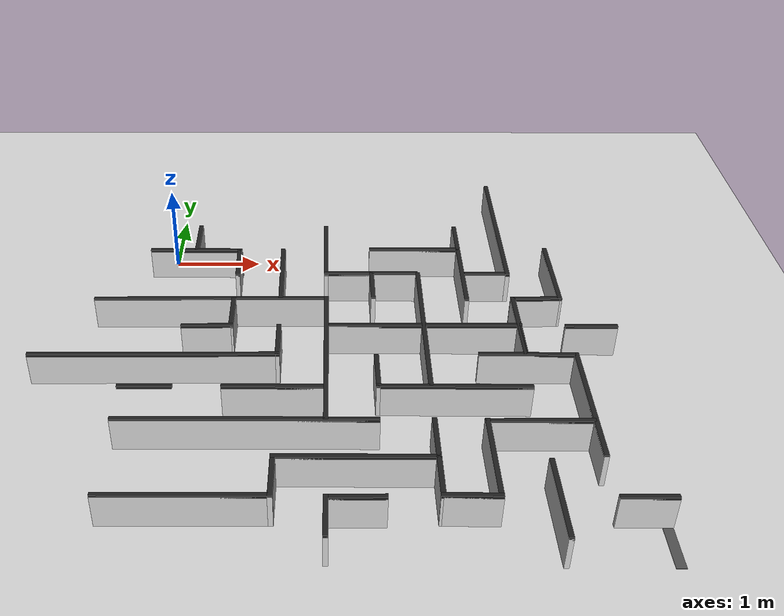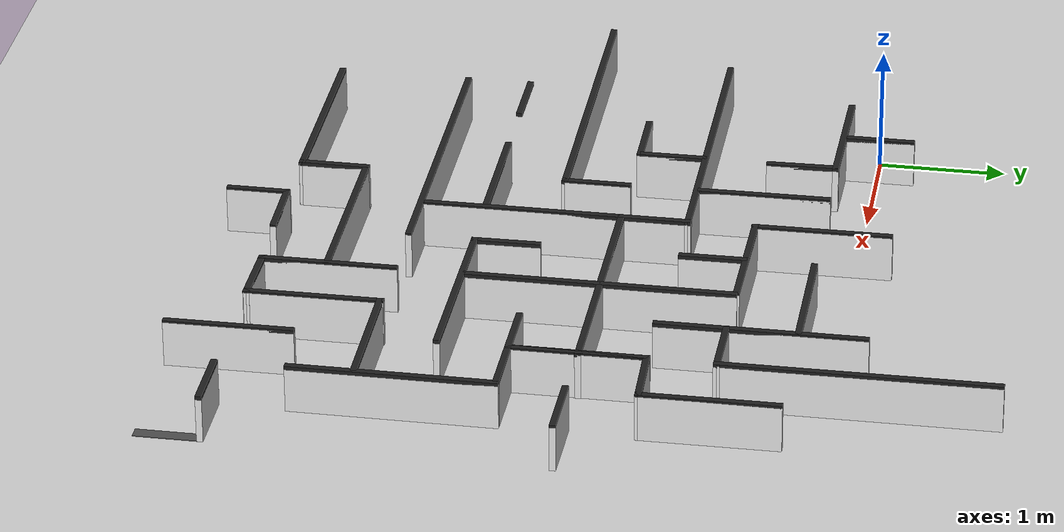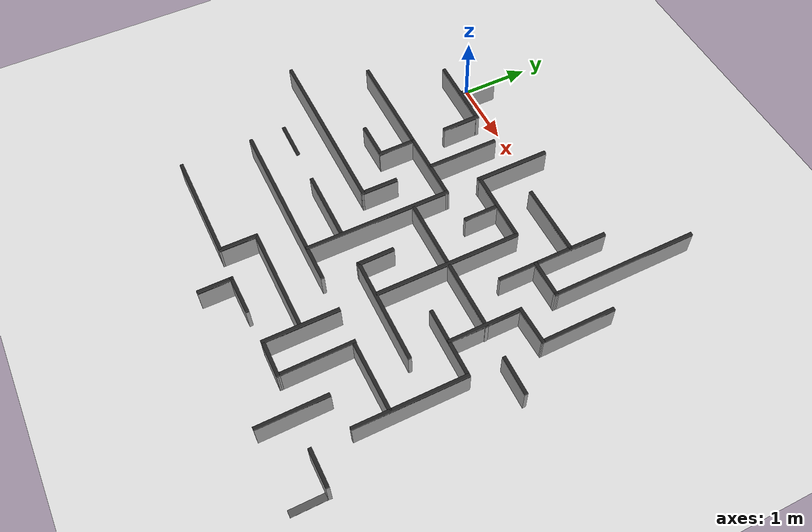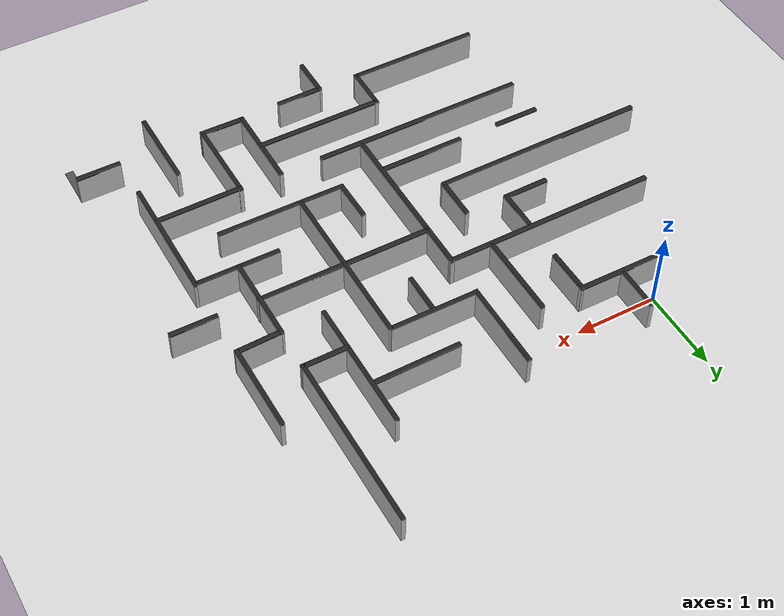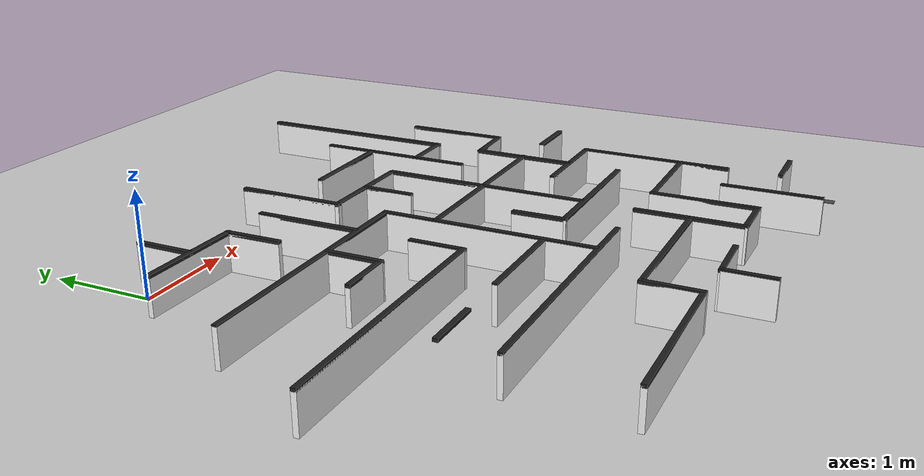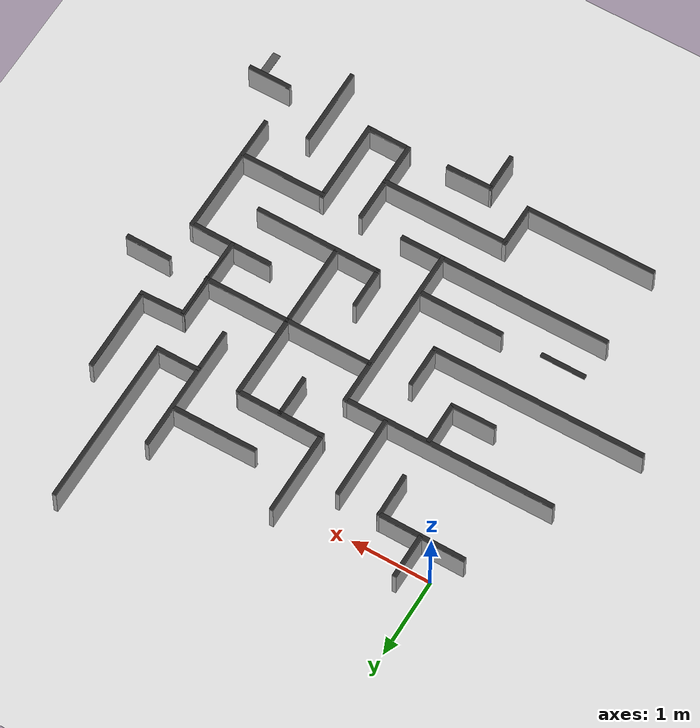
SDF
<sdf version="1.6">
 <world name="default">
  <model name="ground_plane">
   <static>1</static>
   <link name="link">
    <collision name="collision">
     <geometry><plane><normal>0 0 1</normal><size>100 100</size></plane></geometry>
     <surface><friction><ode><mu>100</mu><mu2>50</mu2></ode></friction></surface>
    </collision>
    <visual name="visual">
     <cast_shadows>0</cast_shadows>
     <geometry><plane><normal>0 0 1</normal><size>100 100</size></plane></geometry>
     <material>
      <script><uri>file://media/materials/scripts/gazebo.material</uri><name>Gazebo/Grey</name></script>
     </material>
    </visual>
   </link>
  </model>
  <model name="maze_cross_body">
   <link name="Wall_104">
    <collision name="Wall_104_Collision">
     <geometry><box><size>1.10225 0.05 0.37</size></box></geometry>
     <pose>0 0 0.185 0 -0 0</pose>
    </collision>
    <visual name="Wall_104_Visual">
     <pose>0 0 0.185 0 -0 0</pose>
     <geometry><box><size>1.10225 0.05 0.37</size></box></geometry>
     <material>
      <script><uri>file://media/materials/scripts/gazebo.material</uri><name>Gazebo/White</name></script>
      <ambient>1 1 1 1</ambient>
     </material>
    </visual>
    <pose>0.280113 -0.273238 0 0 0 -0.007388</pose>
   </link>
   <link name="Wall_106">
    <collision name="Wall_106_Collision">
     <geometry><box><size>0.575262 0.05 0.37</size></box></geometry>
     <pose>0 0 0.185 0 -0 0</pose>
    </collision>
    <visual name="Wall_106_Visual">
     <pose>0 0 0.185 0 -0 0</pose>
     <geometry><box><size>0.575262 0.05 0.37</size></box></geometry>
     <material>
      <script><uri>file://media/materials/scripts/gazebo.material</uri><name>Gazebo/White</name></script>
      <ambient>1 1 1 1</ambient>
     </material>
    </visual>
    <pose>0.806693 -0.539598 0 0 -0 1.58905</pose>
   </link>
   <link name="Wall_108">
    <collision name="Wall_108_Collision">
     <geometry><box><size>0.568453 0.05 0.37</size></box></geometry>
     <pose>0 0 0.185 0 -0 0</pose>
    </collision>
    <visual name="Wall_108_Visual">
     <pose>0 0 0.185 0 -0 0</pose>
     <geometry><box><size>0.568453 0.05 0.37</size></box></geometry>
     <material>
      <script><uri>file://media/materials/scripts/gazebo.material</uri><name>Gazebo/White</name></script>
      <ambient>1 1 1 1</ambient>
     </material>
    </visual>
    <pose>0.284037 0.010875 0 0 -0 1.57077</pose>
   </link>
   <link name="Wall_197">
    <collision name="Wall_197_Collision">
     <geometry><box><size>1.65 0.05 0.37</size></box></geometry>
     <pose>0 0 0.185 0 -0 0</pose>
    </collision>
    <visual name="Wall_197_Visual">
     <pose>0 0 0.185 0 -0 0</pose>
     <geometry><box><size>1.65 0.05 0.37</size></box></geometry>
     <material>
      <script><uri>file://media/materials/scripts/gazebo.material</uri><name>Gazebo/White</name></script>
      <ambient>1 1 1 1</ambient>
     </material>
    </visual>
    <pose>0.55 -4.45935 0 0 -0 0</pose>
   </link>
   <link name="Wall_198">
    <collision name="Wall_198_Collision">
     <geometry><box><size>0.564496 0.05 0.37</size></box></geometry>
     <pose>0 0 0.185 0 -0 0</pose>
    </collision>
    <visual name="Wall_198_Visual">
     <pose>0 0 0.185 0 -0 0</pose>
     <geometry><box><size>0.564496 0.05 0.37</size></box></geometry>
     <material>
      <script><uri>file://media/materials/scripts/gazebo.material</uri><name>Gazebo/White</name></script>
      <ambient>1 1 1 1</ambient>
     </material>
    </visual>
    <pose>1.3515 -4.20235 0 0 -0 1.56496</pose>
   </link>
   <link name="Wall_199">
    <collision name="Wall_199_Collision">
     <geometry><box><size>1.60756 0.05 0.37</size></box></geometry>
     <pose>0 0 0.185 0 -0 0</pose>
    </collision>
    <visual name="Wall_199_Visual">
     <pose>0 0 0.185 0 -0 0</pose>
     <geometry><box><size>1.60756 0.05 0.37</size></box></geometry>
     <material>
      <script><uri>file://media/materials/scripts/gazebo.material</uri><name>Gazebo/White</name></script>
      <ambient>1 1 1 1</ambient>
     </material>
    </visual>
    <pose>2.132 -3.94535 0 0 -0 0</pose>
   </link>
   <link name="Wall_201">
    <collision name="Wall_201_Collision">
     <geometry><box><size>0.504061 0.05 0.37</size></box></geometry>
     <pose>0 0 0.185 0 -0 0</pose>
    </collision>
    <visual name="Wall_201_Visual">
     <pose>0 0 0.185 0 -0 0</pose>
     <geometry><box><size>0.504061 0.05 0.37</size></box></geometry>
     <material>
      <script><uri>file://media/materials/scripts/gazebo.material</uri><name>Gazebo/White</name></script>
      <ambient>1 1 1 1</ambient>
     </material>
    </visual>
    <pose>1.852 -4.70835 0 0 0 -1.5708</pose>
   </link>
   <link name="Wall_203">
    <collision name="Wall_203_Collision">
     <geometry><box><size>0.586874 0.05 0.37</size></box></geometry>
     <pose>0 0 0.185 0 -0 0</pose>
    </collision>
    <visual name="Wall_203_Visual">
     <pose>0 0 0.185 0 -0 0</pose>
     <geometry><box><size>0.586874 0.05 0.37</size></box></geometry>
     <material>
      <script><uri>file://media/materials/scripts/gazebo.material</uri><name>Gazebo/White</name></script>
      <ambient>1 1 1 1</ambient>
     </material>
    </visual>
    <pose>2.1205 -4.47785 0 0 -0 0.013035</pose>
   </link>
   <link name="Wall_205">
    <collision name="Wall_205_Collision">
     <geometry><box><size>1.08389 0.05 0.37</size></box></geometry>
     <pose>0 0 0.185 0 -0 0</pose>
    </collision>
    <visual name="Wall_205_Visual">
     <pose>0 0 0.185 0 -0 0</pose>
     <geometry><box><size>1.08389 0.05 0.37</size></box></geometry>
     <material>
      <script><uri>file://media/materials/scripts/gazebo.material</uri><name>Gazebo/White</name></script>
      <ambient>1 1 1 1</ambient>
     </material>
    </visual>
    <pose>2.911 -3.93629 0 0 0 -1.5708</pose>
   </link>
   <link name="Wall_206">
    <collision name="Wall_206_Collision">
     <geometry><box><size>0.569926 0.05 0.37</size></box></geometry>
     <pose>0 0 0.185 0 -0 0</pose>
    </collision>
    <visual name="Wall_206_Visual">
     <pose>0 0 0.185 0 -0 0</pose>
     <geometry><box><size>0.569926 0.05 0.37</size></box></geometry>
     <material>
      <script><uri>file://media/materials/scripts/gazebo.material</uri><name>Gazebo/White</name></script>
      <ambient>1 1 1 1</ambient>
     </material>
    </visual>
    <pose>3.17094 -4.45656 0 0 0 -0.012792</pose>
   </link>
   <link name="Wall_207">
    <collision name="Wall_207_Collision">
     <geometry><box><size>1.07836 0.05 0.37</size></box></geometry>
     <pose>0 0 0.185 0 -0 0</pose>
    </collision>
    <visual name="Wall_207_Visual">
     <pose>0 0 0.185 0 -0 0</pose>
     <geometry><box><size>1.07836 0.05 0.37</size></box></geometry>
     <material>
      <script><uri>file://media/materials/scripts/gazebo.material</uri><name>Gazebo/White</name></script>
      <ambient>1 1 1 1</ambient>
     </material>
    </visual>
    <pose>3.42844 -3.94245 0 0 -0 1.57554</pose>
   </link>
   <link name="Wall_208">
    <collision name="Wall_208_Collision">
     <geometry><box><size>1.08079 0.05 0.37</size></box></geometry>
     <pose>0 0 0.185 0 -0 0</pose>
    </collision>
    <visual name="Wall_208_Visual">
     <pose>0 0 0.185 0 -0 0</pose>
     <geometry><box><size>1.08079 0.05 0.37</size></box></geometry>
     <material>
      <script><uri>file://media/materials/scripts/gazebo.material</uri><name>Gazebo/White</name></script>
      <ambient>1 1 1 1</ambient>
     </material>
    </visual>
    <pose>3.9415 -3.43131 0 0 -0 0.006789</pose>
   </link>
   <link name="Wall_210">
    <collision name="Wall_210_Collision">
     <geometry><box><size>1.00501 0.05 0.37</size></box></geometry>
     <pose>0 0 0.185 0 -0 0</pose>
    </collision>
    <visual name="Wall_210_Visual">
     <pose>0 0 0.185 0 -0 0</pose>
     <geometry><box><size>1.00501 0.05 0.37</size></box></geometry>
     <material>
      <script><uri>file://media/materials/scripts/gazebo.material</uri><name>Gazebo/White</name></script>
      <ambient>1 1 1 1</ambient>
     </material>
    </visual>
    <pose>3.9605 -4.48263 0 0 0 -1.56556</pose>
   </link>
   <link name="Wall_212">
    <collision name="Wall_212_Collision">
     <geometry><box><size>0.546237 0.05 0.37</size></box></geometry>
     <pose>0 0 0.185 0 -0 0</pose>
    </collision>
    <visual name="Wall_212_Visual">
     <pose>0 0 0.185 0 -0 0</pose>
     <geometry><box><size>0.546237 0.05 0.37</size></box></geometry>
     <material>
      <script><uri>file://media/materials/scripts/gazebo.material</uri><name>Gazebo/White</name></script>
      <ambient>1 1 1 1</ambient>
     </material>
    </visual>
    <pose>4.75559 -4.47399 0 0 -0 0</pose>
   </link>
   <link name="Wall_214">
    <collision name="Wall_214_Collision">
     <geometry><box><size>1.60621 0.05 0.37</size></box></geometry>
     <pose>0 0 0.185 0 -0 0</pose>
    </collision>
    <visual name="Wall_214_Visual">
     <pose>0 0 0.185 0 -0 0</pose>
     <geometry><box><size>1.60621 0.05 0.37</size></box></geometry>
     <material>
      <script><uri>file://media/materials/scripts/gazebo.material</uri><name>Gazebo/White</name></script>
      <ambient>1 1 1 1</ambient>
     </material>
    </visual>
    <pose>4.4825 -3.14235 0 0 0 -1.57401</pose>
   </link>
   <link name="Wall_216">
    <collision name="Wall_216_Collision">
     <geometry><box><size>1.01901 0.05 0.37</size></box></geometry>
     <pose>0 0 0.185 0 -0 0</pose>
    </collision>
    <visual name="Wall_216_Visual">
     <pose>0 0 0.185 0 -0 0</pose>
     <geometry><box><size>1.01901 0.05 0.37</size></box></geometry>
     <material>
      <script><uri>file://media/materials/scripts/gazebo.material</uri><name>Gazebo/White</name></script>
      <ambient>1 1 1 1</ambient>
     </material>
    </visual>
    <pose>3.96526 -2.36066 0 0 0 -0.00516</pose>
   </link>
   <link name="Wall_218">
    <collision name="Wall_218_Collision">
     <geometry><box><size>1.069 0.05 0.37</size></box></geometry>
     <pose>0 0 0.185 0 -0 0</pose>
    </collision>
    <visual name="Wall_218_Visual">
     <pose>0 0 0.185 0 -0 0</pose>
     <geometry><box><size>1.069 0.05 0.37</size></box></geometry>
     <material>
      <script><uri>file://media/materials/scripts/gazebo.material</uri><name>Gazebo/White</name></script>
      <ambient>1 1 1 1</ambient>
     </material>
    </visual>
    <pose>3.95799 -1.84479 0 0 0 -1.57077</pose>
   </link>
   <link name="Wall_220">
    <collision name="Wall_220_Collision">
     <geometry><box><size>2.1499 0.05 0.37</size></box></geometry>
     <pose>0 0 0.185 0 -0 0</pose>
    </collision>
    <visual name="Wall_220_Visual">
     <pose>0 0 0.185 0 -0 0</pose>
     <geometry><box><size>2.1499 0.05 0.37</size></box></geometry>
     <material>
      <script><uri>file://media/materials/scripts/gazebo.material</uri><name>Gazebo/White</name></script>
      <ambient>1 1 1 1</ambient>
     </material>
    </visual>
    <pose>2.915 -1.83235 0 0 -0 0</pose>
   </link>
   <link name="Wall_222">
    <collision name="Wall_222_Collision">
     <geometry><box><size>2.10657 0.05 0.37</size></box></geometry>
     <pose>0 0 0.185 0 -0 0</pose>
    </collision>
    <visual name="Wall_222_Visual">
     <pose>0 0 0.185 0 -0 0</pose>
     <geometry><box><size>2.10657 0.05 0.37</size></box></geometry>
     <material>
      <script><uri>file://media/materials/scripts/gazebo.material</uri><name>Gazebo/White</name></script>
      <ambient>1 1 1 1</ambient>
     </material>
    </visual>
    <pose>2.916 -1.83485 0 0 0 -1.5708</pose>
   </link>
   <link name="Wall_224">
    <collision name="Wall_224_Collision">
     <geometry><box><size>0.54288 0.05 0.37</size></box></geometry>
     <pose>0 0 0.185 0 -0 0</pose>
    </collision>
    <visual name="Wall_224_Visual">
     <pose>0 0 0.185 0 -0 0</pose>
     <geometry><box><size>0.54288 0.05 0.37</size></box></geometry>
     <material>
      <script><uri>file://media/materials/scripts/gazebo.material</uri><name>Gazebo/White</name></script>
      <ambient>1 1 1 1</ambient>
     </material>
    </visual>
    <pose>2.3823 -2.64744 0 0 0 -1.55738</pose>
   </link>
   <link name="Wall_226">
    <collision name="Wall_226_Collision">
     <geometry><box><size>1.59634 0.05 0.37</size></box></geometry>
     <pose>0 0 0.185 0 -0 0</pose>
    </collision>
    <visual name="Wall_226_Visual">
     <pose>0 0 0.185 0 -0 0</pose>
     <geometry><box><size>1.59634 0.05 0.37</size></box></geometry>
     <material>
      <script><uri>file://media/materials/scripts/gazebo.material</uri><name>Gazebo/White</name></script>
      <ambient>1 1 1 1</ambient>
     </material>
    </visual>
    <pose>3.15876 -2.89834 0 0 0 -0.006231</pose>
   </link>
   <link name="Wall_228">
    <collision name="Wall_228_Collision">
     <geometry><box><size>2.14428 0.05 0.37</size></box></geometry>
     <pose>0 0 0.185 0 -0 0</pose>
    </collision>
    <visual name="Wall_228_Visual">
     <pose>0 0 0.185 0 -0 0</pose>
     <geometry><box><size>2.14428 0.05 0.37</size></box></geometry>
     <material>
      <script><uri>file://media/materials/scripts/gazebo.material</uri><name>Gazebo/White</name></script>
      <ambient>1 1 1 1</ambient>
     </material>
    </visual>
    <pose>1.85 -2.35635 0 0 0 -1.5708</pose>
   </link>
   <link name="Wall_230">
    <collision name="Wall_230_Collision">
     <geometry><box><size>2.65165 0.05 0.37</size></box></geometry>
     <pose>0 0 0.185 0 -0 0</pose>
    </collision>
    <visual name="Wall_230_Visual">
     <pose>0 0 0.185 0 -0 0</pose>
     <geometry><box><size>2.65165 0.05 0.37</size></box></geometry>
     <material>
      <script><uri>file://media/materials/scripts/gazebo.material</uri><name>Gazebo/White</name></script>
      <ambient>1 1 1 1</ambient>
     </material>
    </visual>
    <pose>1.057 -3.41235 0 0 -0 0</pose>
   </link>
   <link name="Wall_236">
    <collision name="Wall_236_Collision">
     <geometry><box><size>1.04339 0.05 0.37</size></box></geometry>
     <pose>0 0 0.185 0 -0 0</pose>
    </collision>
    <visual name="Wall_236_Visual">
     <pose>0 0 0.185 0 -0 0</pose>
     <geometry><box><size>1.04339 0.05 0.37</size></box></geometry>
     <material>
      <script><uri>file://media/materials/scripts/gazebo.material</uri><name>Gazebo/White</name></script>
      <ambient>1 1 1 1</ambient>
     </material>
    </visual>
    <pose>1.3055 -2.90235 0 0 -0 0</pose>
   </link>
   <link name="Wall_238">
    <collision name="Wall_238_Collision">
     <geometry><box><size>2.64804 0.05 0.37</size></box></geometry>
     <pose>0 0 0.185 0 -0 0</pose>
    </collision>
    <visual name="Wall_238_Visual">
     <pose>0 0 0.185 0 -0 0</pose>
     <geometry><box><size>2.64804 0.05 0.37</size></box></geometry>
     <material>
      <script><uri>file://media/materials/scripts/gazebo.material</uri><name>Gazebo/White</name></script>
      <ambient>1 1 1 1</ambient>
     </material>
    </visual>
    <pose>0.551 -1.31635 0 0 -0 0.005389</pose>
   </link>
   <link name="Wall_240">
    <collision name="Wall_240_Collision">
     <geometry><box><size>1.04911 0.05 0.37</size></box></geometry>
     <pose>0 0 0.185 0 -0 0</pose>
    </collision>
    <visual name="Wall_240_Visual">
     <pose>0 0 0.185 0 -0 0</pose>
     <geometry><box><size>1.04911 0.05 0.37</size></box></geometry>
     <material>
      <script><uri>file://media/materials/scripts/gazebo.material</uri><name>Gazebo/White</name></script>
      <ambient>1 1 1 1</ambient>
     </material>
    </visual>
    <pose>1.331 -0.780851 0 0 0 -1.56479</pose>
   </link>
   <link name="Wall_317">
    <collision name="Wall_317_Collision">
     <geometry><box><size>1.0997 0.05 0.37</size></box></geometry>
     <pose>0 0 0.185 0 -0 0</pose>
    </collision>
    <visual name="Wall_317_Visual">
     <pose>0 0 0.185 0 -0 0</pose>
     <geometry><box><size>1.0997 0.05 0.37</size></box></geometry>
     <material>
      <script><uri>file://media/materials/scripts/gazebo.material</uri><name>Gazebo/White</name></script>
      <ambient>1 1 1 1</ambient>
     </material>
    </visual>
    <pose>1.8435 -0.263196 0 0 0 -1.56603</pose>
   </link>
   <link name="Wall_318">
    <collision name="Wall_318_Collision">
     <geometry><box><size>1.09642 0.05 0.37</size></box></geometry>
     <pose>0 0 0.185 0 -0 0</pose>
    </collision>
    <visual name="Wall_318_Visual">
     <pose>0 0 0.185 0 -0 0</pose>
     <geometry><box><size>1.09642 0.05 0.37</size></box></geometry>
     <material>
      <script><uri>file://media/materials/scripts/gazebo.material</uri><name>Gazebo/White</name></script>
      <ambient>1 1 1 1</ambient>
     </material>
    </visual>
    <pose>2.369 -0.787773 0 0 0 -0.005736</pose>
   </link>
   <link name="Wall_320">
    <collision name="Wall_320_Collision">
     <geometry><box><size>0.527701 0.05 0.37</size></box></geometry>
     <pose>0 0 0.185 0 -0 0</pose>
    </collision>
    <visual name="Wall_320_Visual">
     <pose>0 0 0.185 0 -0 0</pose>
     <geometry><box><size>0.527701 0.05 0.37</size></box></geometry>
     <material>
      <script><uri>file://media/materials/scripts/gazebo.material</uri><name>Gazebo/White</name></script>
      <ambient>1 1 1 1</ambient>
     </material>
    </visual>
    <pose>2.3795 -1.04235 0 0 0 -1.56452</pose>
   </link>
   <link name="Wall_322">
    <collision name="Wall_322_Collision">
     <geometry><box><size>1.63234 0.05 0.37</size></box></geometry>
     <pose>0 0 0.185 0 -0 0</pose>
    </collision>
    <visual name="Wall_322_Visual">
     <pose>0 0 0.185 0 -0 0</pose>
     <geometry><box><size>1.63234 0.05 0.37</size></box></geometry>
     <material>
      <script><uri>file://media/materials/scripts/gazebo.material</uri><name>Gazebo/White</name></script>
      <ambient>1 1 1 1</ambient>
     </material>
    </visual>
    <pose>3.436 -0.534351 0 0 0 -1.5708</pose>
   </link>
   <link name="Wall_324">
    <collision name="Wall_324_Collision">
     <geometry><box><size>1.0788 0.05 0.37</size></box></geometry>
     <pose>0 0 0.185 0 -0 0</pose>
    </collision>
    <visual name="Wall_324_Visual">
     <pose>0 0 0.185 0 -0 0</pose>
     <geometry><box><size>1.0788 0.05 0.37</size></box></geometry>
     <material>
      <script><uri>file://media/materials/scripts/gazebo.material</uri><name>Gazebo/White</name></script>
      <ambient>1 1 1 1</ambient>
     </material>
    </visual>
    <pose>2.90461 -0.255597 0 0 -0 0.004366</pose>
   </link>
   <link name="Wall_339">
    <collision name="Wall_339_Collision">
     <geometry><box><size>2.15538 0.05 0.37</size></box></geometry>
     <pose>0 0 0.185 0 -0 0</pose>
    </collision>
    <visual name="Wall_339_Visual">
     <pose>0 0 0.185 0 -0 0</pose>
     <geometry><box><size>2.15538 0.05 0.37</size></box></geometry>
     <material>
      <script><uri>file://media/materials/scripts/gazebo.material</uri><name>Gazebo/White</name></script>
      <ambient>1 1 1 1</ambient>
     </material>
    </visual>
    <pose>3.96277 0.256609 0 0 0 -1.56952</pose>
   </link>
   <link name="Wall_340">
    <collision name="Wall_340_Collision">
     <geometry><box><size>0.569 0.05 0.37</size></box></geometry>
     <pose>0 0 0.185 0 -0 0</pose>
    </collision>
    <visual name="Wall_340_Visual">
     <pose>0 0 0.185 0 -0 0</pose>
     <geometry><box><size>0.569 0.05 0.37</size></box></geometry>
     <material>
      <script><uri>file://media/materials/scripts/gazebo.material</uri><name>Gazebo/White</name></script>
      <ambient>1 1 1 1</ambient>
     </material>
    </visual>
    <pose>3.70461 -0.795728 0 0 -0 3.14159</pose>
   </link>
   <link name="Wall_342">
    <collision name="Wall_342_Collision">
     <geometry><box><size>1.09101 0.05 0.37</size></box></geometry>
     <pose>0 0 0.185 0 -0 0</pose>
    </collision>
    <visual name="Wall_342_Visual">
     <pose>0 0 0.185 0 -0 0</pose>
     <geometry><box><size>1.09101 0.05 0.37</size></box></geometry>
     <material>
      <script><uri>file://media/materials/scripts/gazebo.material</uri><name>Gazebo/White</name></script>
      <ambient>1 1 1 1</ambient>
     </material>
    </visual>
    <pose>4.487 -0.783851 0 0 0 -1.56695</pose>
   </link>
   <link name="Wall_343">
    <collision name="Wall_343_Collision">
     <geometry><box><size>0.580661 0.05 0.37</size></box></geometry>
     <pose>0 0 0.185 0 -0 0</pose>
    </collision>
    <visual name="Wall_343_Visual">
     <pose>0 0 0.185 0 -0 0</pose>
     <geometry><box><size>0.580661 0.05 0.37</size></box></geometry>
     <material>
      <script><uri>file://media/materials/scripts/gazebo.material</uri><name>Gazebo/White</name></script>
      <ambient>1 1 1 1</ambient>
     </material>
    </visual>
    <pose>4.22371 -1.31284 0 0 0 -3.1096</pose>
   </link>
   <link name="Wall_344">
    <collision name="Wall_344_Collision">
     <geometry><box><size>1.08302 0.05 0.37</size></box></geometry>
     <pose>0 0 0.185 0 -0 0</pose>
    </collision>
    <visual name="Wall_344_Visual">
     <pose>0 0 0.185 0 -0 0</pose>
     <geometry><box><size>1.08302 0.05 0.37</size></box></geometry>
     <material>
      <script><uri>file://media/materials/scripts/gazebo.material</uri><name>Gazebo/White</name></script>
      <ambient>1 1 1 1</ambient>
     </material>
    </visual>
    <pose>3.95821 -1.83784 0 0 0 -1.57121</pose>
   </link>
   <link name="Wall_352">
    <collision name="Wall_352_Collision">
     <geometry><box><size>0.554004 0.05 0.37</size></box></geometry>
     <pose>0 0 0.185 0 -0 0</pose>
    </collision>
    <visual name="Wall_352_Visual">
     <pose>0 0 0.185 0 -0 0</pose>
     <geometry><box><size>0.554004 0.05 0.37</size></box></geometry>
     <material>
      <script><uri>file://media/materials/scripts/gazebo.material</uri><name>Gazebo/White</name></script>
      <ambient>1 1 1 1</ambient>
     </material>
    </visual>
    <pose>0.805 -1.58635 0 0 -0 1.57476</pose>
   </link>
   <link name="Wall_354">
    <collision name="Wall_354_Collision">
     <geometry><box><size>0.569558 0.05 0.37</size></box></geometry>
     <pose>0 0 0.185 0 -0 0</pose>
    </collision>
    <visual name="Wall_354_Visual">
     <pose>0 0 0.185 0 -0 0</pose>
     <geometry><box><size>0.569558 0.05 0.37</size></box></geometry>
     <material>
      <script><uri>file://media/materials/scripts/gazebo.material</uri><name>Gazebo/White</name></script>
      <ambient>1 1 1 1</ambient>
     </material>
    </visual>
    <pose>0.546 -1.84135 0 0 -0 0.011538</pose>
   </link>
   <link name="Wall_356">
    <collision name="Wall_356_Collision">
     <geometry><box><size>0.573257 0.05 0.37</size></box></geometry>
     <pose>0 0 0.185 0 -0 0</pose>
    </collision>
    <visual name="Wall_356_Visual">
     <pose>0 0 0.185 0 -0 0</pose>
     <geometry><box><size>0.573257 0.05 0.37</size></box></geometry>
     <material>
      <script><uri>file://media/materials/scripts/gazebo.material</uri><name>Gazebo/White</name></script>
      <ambient>1 1 1 1</ambient>
     </material>
    </visual>
    <pose>4.7425 -1.84935 0 0 0 -0.007648</pose>
   </link>
   <link name="Wall_97">
    <collision name="Wall_97_Collision">
     <geometry><box><size>2.66641 0.05 0.37</size></box></geometry>
     <pose>0 0 0.185 0 -0 0</pose>
    </collision>
    <visual name="Wall_97_Visual">
     <pose>0 0 0.185 0 -0 0</pose>
     <geometry><box><size>2.66641 0.05 0.37</size></box></geometry>
     <material>
      <script><uri>file://media/materials/scripts/gazebo.material</uri><name>Gazebo/White</name></script>
      <ambient>1 1 1 1</ambient>
     </material>
    </visual>
    <pose>0.026256 -2.364 0 0 -0 0.005716</pose>
   </link>
   <link name="Wall_98">
    <collision name="Wall_98_Collision">
     <geometry><box><size>0.549284 0.05 0.37</size></box></geometry>
     <pose>0 0 0.185 0 -0 0</pose>
    </collision>
    <visual name="Wall_98_Visual">
     <pose>0 0 0.185 0 -0 0</pose>
     <geometry><box><size>0.549284 0.05 0.37</size></box></geometry>
     <material>
      <script><uri>file://media/materials/scripts/gazebo.material</uri><name>Gazebo/White</name></script>
      <ambient>1 1 1 1</ambient>
     </material>
    </visual>
    <pose>1.33444 -2.10699 0 0 -0 1.5708</pose>
   </link>
   <static>1</static>
  </model>
  <model name="maze_cross_body_0">
   <link name="Wall_104">
    <collision name="Wall_104_Collision">
     <geometry><box><size>1.10225 0.05 0.03</size></box></geometry>
     <pose>0 0 0.37 0 -0 0</pose>
    </collision>
    <visual name="Wall_104_Visual">
     <pose>0 0 0.37 0 -0 0</pose>
     <geometry><box><size>1.10225 0.05 0.03</size></box></geometry>
     <material>
      <script><uri>file://media/materials/scripts/gazebo.material</uri><name>Gazebo/Black</name></script>
      <ambient>0 0 0 1</ambient>
     </material>
    </visual>
    <pose>0.280113 -0.273238 0 0 0 -0.007388</pose>
   </link>
   <link name="Wall_106">
    <collision name="Wall_106_Collision">
     <geometry><box><size>0.575262 0.05 0.03</size></box></geometry>
     <pose>0 0 0.37 0 -0 0</pose>
    </collision>
    <visual name="Wall_106_Visual">
     <pose>0 0 0.37 0 -0 0</pose>
     <geometry><box><size>0.575262 0.05 0.03</size></box></geometry>
     <material>
      <script><uri>file://media/materials/scripts/gazebo.material</uri><name>Gazebo/Black</name></script>
      <ambient>0 0 0 1</ambient>
     </material>
    </visual>
    <pose>0.806693 -0.539598 0 0 -0 1.58905</pose>
   </link>
   <link name="Wall_108">
    <collision name="Wall_108_Collision">
     <geometry><box><size>0.568453 0.05 0.03</size></box></geometry>
     <pose>0 0 0.37 0 -0 0</pose>
    </collision>
    <visual name="Wall_108_Visual">
     <pose>0 0 0.37 0 -0 0</pose>
     <geometry><box><size>0.568453 0.05 0.03</size></box></geometry>
     <material>
      <script><uri>file://media/materials/scripts/gazebo.material</uri><name>Gazebo/Black</name></script>
      <ambient>0 0 0 1</ambient>
     </material>
    </visual>
    <pose>0.284037 0.010875 0 0 -0 1.57077</pose>
   </link>
   <link name="Wall_197">
    <collision name="Wall_197_Collision">
     <geometry><box><size>1.65 0.05 0.03</size></box></geometry>
     <pose>0 0 0.37 0 -0 0</pose>
    </collision>
    <visual name="Wall_197_Visual">
     <pose>0 0 0.37 0 -0 0</pose>
     <geometry><box><size>1.65 0.05 0.03</size></box></geometry>
     <material>
      <script><uri>file://media/materials/scripts/gazebo.material</uri><name>Gazebo/Black</name></script>
      <ambient>0 0 0 1</ambient>
     </material>
    </visual>
    <pose>0.55 -4.45935 0 0 -0 0</pose>
   </link>
   <link name="Wall_198">
    <collision name="Wall_198_Collision">
     <geometry><box><size>0.564496 0.05 0.03</size></box></geometry>
     <pose>0 0 0.37 0 -0 0</pose>
    </collision>
    <visual name="Wall_198_Visual">
     <pose>0 0 0.37 0 -0 0</pose>
     <geometry><box><size>0.564496 0.05 0.03</size></box></geometry>
     <material>
      <script><uri>file://media/materials/scripts/gazebo.material</uri><name>Gazebo/Black</name></script>
      <ambient>0 0 0 1</ambient>
     </material>
    </visual>
    <pose>1.3515 -4.20235 0 0 -0 1.56496</pose>
   </link>
   <link name="Wall_199">
    <collision name="Wall_199_Collision">
     <geometry><box><size>1.60756 0.05 0.03</size></box></geometry>
     <pose>0 0 0.37 0 -0 0</pose>
    </collision>
    <visual name="Wall_199_Visual">
     <pose>0 0 0.37 0 -0 0</pose>
     <geometry><box><size>1.60756 0.05 0.03</size></box></geometry>
     <material>
      <script><uri>file://media/materials/scripts/gazebo.material</uri><name>Gazebo/Black</name></script>
      <ambient>0 0 0 1</ambient>
     </material>
    </visual>
    <pose>2.132 -3.94535 0 0 -0 0</pose>
   </link>
   <link name="Wall_201">
    <collision name="Wall_201_Collision">
     <geometry><box><size>0.504061 0.05 0.03</size></box></geometry>
     <pose>0 0 0.37 0 -0 0</pose>
    </collision>
    <visual name="Wall_201_Visual">
     <pose>0 0 0.37 0 -0 0</pose>
     <geometry><box><size>0.504061 0.05 0.03</size></box></geometry>
     <material>
      <script><uri>file://media/materials/scripts/gazebo.material</uri><name>Gazebo/Black</name></script>
      <ambient>0 0 0 1</ambient>
     </material>
    </visual>
    <pose>1.852 -4.70835 0 0 0 -1.5708</pose>
   </link>
   <link name="Wall_203">
    <collision name="Wall_203_Collision">
     <geometry><box><size>0.586874 0.05 0.03</size></box></geometry>
     <pose>0 0 0.37 0 -0 0</pose>
    </collision>
    <visual name="Wall_203_Visual">
     <pose>0 0 0.37 0 -0 0</pose>
     <geometry><box><size>0.586874 0.05 0.03</size></box></geometry>
     <material>
      <script><uri>file://media/materials/scripts/gazebo.material</uri><name>Gazebo/Black</name></script>
      <ambient>0 0 0 1</ambient>
     </material>
    </visual>
    <pose>2.1205 -4.47785 0 0 -0 0.013035</pose>
   </link>
   <link name="Wall_205">
    <collision name="Wall_205_Collision">
     <geometry><box><size>1.08389 0.05 0.03</size></box></geometry>
     <pose>0 0 0.37 0 -0 0</pose>
    </collision>
    <visual name="Wall_205_Visual">
     <pose>0 0 0.37 0 -0 0</pose>
     <geometry><box><size>1.08389 0.05 0.03</size></box></geometry>
     <material>
      <script><uri>file://media/materials/scripts/gazebo.material</uri><name>Gazebo/Black</name></script>
      <ambient>0 0 0 1</ambient>
     </material>
    </visual>
    <pose>2.911 -3.93629 0 0 0 -1.5708</pose>
   </link>
   <link name="Wall_206">
    <collision name="Wall_206_Collision">
     <geometry><box><size>0.569926 0.05 0.03</size></box></geometry>
     <pose>0 0 0.37 0 -0 0</pose>
    </collision>
    <visual name="Wall_206_Visual">
     <pose>0 0 0.37 0 -0 0</pose>
     <geometry><box><size>0.569926 0.05 0.03</size></box></geometry>
     <material>
      <script><uri>file://media/materials/scripts/gazebo.material</uri><name>Gazebo/Black</name></script>
      <ambient>0 0 0 1</ambient>
     </material>
    </visual>
    <pose>3.17094 -4.45656 0 0 0 -0.012792</pose>
   </link>
   <link name="Wall_207">
    <collision name="Wall_207_Collision">
     <geometry><box><size>1.07836 0.05 0.03</size></box></geometry>
     <pose>0 0 0.37 0 -0 0</pose>
    </collision>
    <visual name="Wall_207_Visual">
     <pose>0 0 0.37 0 -0 0</pose>
     <geometry><box><size>1.07836 0.05 0.03</size></box></geometry>
     <material>
      <script><uri>file://media/materials/scripts/gazebo.material</uri><name>Gazebo/Black</name></script>
      <ambient>0 0 0 1</ambient>
     </material>
    </visual>
    <pose>3.42844 -3.94245 0 0 -0 1.57554</pose>
   </link>
   <link name="Wall_208">
    <collision name="Wall_208_Collision">
     <geometry><box><size>1.08079 0.05 0.03</size></box></geometry>
     <pose>0 0 0.37 0 -0 0</pose>
    </collision>
    <visual name="Wall_208_Visual">
     <pose>0 0 0.37 0 -0 0</pose>
     <geometry><box><size>1.08079 0.05 0.03</size></box></geometry>
     <material>
      <script><uri>file://media/materials/scripts/gazebo.material</uri><name>Gazebo/Black</name></script>
      <ambient>0 0 0 1</ambient>
     </material>
    </visual>
    <pose>3.9415 -3.43131 0 0 -0 0.006789</pose>
   </link>
   <link name="Wall_210">
    <collision name="Wall_210_Collision">
     <geometry><box><size>1.00501 0.05 0.03</size></box></geometry>
     <pose>0 0 0.37 0 -0 0</pose>
    </collision>
    <visual name="Wall_210_Visual">
     <pose>0 0 0.37 0 -0 0</pose>
     <geometry><box><size>1.00501 0.05 0.03</size></box></geometry>
     <material>
      <script><uri>file://media/materials/scripts/gazebo.material</uri><name>Gazebo/Black</name></script>
      <ambient>0 0 0 1</ambient>
     </material>
    </visual>
    <pose>3.9605 -4.48263 0 0 0 -1.56556</pose>
   </link>
   <link name="Wall_212">
    <collision name="Wall_212_Collision">
     <geometry><box><size>0.546237 0.05 0.03</size></box></geometry>
     <pose>0 0 0.37 0 -0 0</pose>
    </collision>
    <visual name="Wall_212_Visual">
     <pose>0 0 0.37 0 -0 0</pose>
     <geometry><box><size>0.546237 0.05 0.03</size></box></geometry>
     <material>
      <script><uri>file://media/materials/scripts/gazebo.material</uri><name>Gazebo/Black</name></script>
      <ambient>0 0 0 1</ambient>
     </material>
    </visual>
    <pose>4.75559 -4.47399 0 0 -0 0</pose>
   </link>
   <link name="Wall_214">
    <collision name="Wall_214_Collision">
     <geometry><box><size>1.60621 0.05 0.03</size></box></geometry>
     <pose>0 0 0.37 0 -0 0</pose>
    </collision>
    <visual name="Wall_214_Visual">
     <pose>0 0 0.37 0 -0 0</pose>
     <geometry><box><size>1.60621 0.05 0.03</size></box></geometry>
     <material>
      <script><uri>file://media/materials/scripts/gazebo.material</uri><name>Gazebo/Black</name></script>
      <ambient>0 0 0 1</ambient>
     </material>
    </visual>
    <pose>4.4825 -3.14235 0 0 0 -1.57401</pose>
   </link>
   <link name="Wall_216">
    <collision name="Wall_216_Collision">
     <geometry><box><size>1.01901 0.05 0.03</size></box></geometry>
     <pose>0 0 0.37 0 -0 0</pose>
    </collision>
    <visual name="Wall_216_Visual">
     <pose>0 0 0.37 0 -0 0</pose>
     <geometry><box><size>1.01901 0.05 0.03</size></box></geometry>
     <material>
      <script><uri>file://media/materials/scripts/gazebo.material</uri><name>Gazebo/Black</name></script>
      <ambient>0 0 0 1</ambient>
     </material>
    </visual>
    <pose>3.96526 -2.36066 0 0 0 -0.00516</pose>
   </link>
   <link name="Wall_218">
    <collision name="Wall_218_Collision">
     <geometry><box><size>1.069 0.05 0.03</size></box></geometry>
     <pose>0 0 0.37 0 -0 0</pose>
    </collision>
    <visual name="Wall_218_Visual">
     <pose>0 0 0.37 0 -0 0</pose>
     <geometry><box><size>1.069 0.05 0.03</size></box></geometry>
     <material>
      <script><uri>file://media/materials/scripts/gazebo.material</uri><name>Gazebo/Black</name></script>
      <ambient>0 0 0 1</ambient>
     </material>
    </visual>
    <pose>3.95799 -1.84479 0 0 0 -1.57077</pose>
   </link>
   <link name="Wall_220">
    <collision name="Wall_220_Collision">
     <geometry><box><size>2.1499 0.05 0.03</size></box></geometry>
     <pose>0 0 0.37 0 -0 0</pose>
    </collision>
    <visual name="Wall_220_Visual">
     <pose>0 0 0.37 0 -0 0</pose>
     <geometry><box><size>2.1499 0.05 0.03</size></box></geometry>
     <material>
      <script><uri>file://media/materials/scripts/gazebo.material</uri><name>Gazebo/Black</name></script>
      <ambient>0 0 0 1</ambient>
     </material>
    </visual>
    <pose>2.915 -1.83235 0 0 -0 0</pose>
   </link>
   <link name="Wall_222">
    <collision name="Wall_222_Collision">
     <geometry><box><size>2.10657 0.05 0.03</size></box></geometry>
     <pose>0 0 0.37 0 -0 0</pose>
    </collision>
    <visual name="Wall_222_Visual">
     <pose>0 0 0.37 0 -0 0</pose>
     <geometry><box><size>2.10657 0.05 0.03</size></box></geometry>
     <material>
      <script><uri>file://media/materials/scripts/gazebo.material</uri><name>Gazebo/Black</name></script>
      <ambient>0 0 0 1</ambient>
     </material>
    </visual>
    <pose>2.916 -1.83485 0 0 0 -1.5708</pose>
   </link>
   <link name="Wall_224">
    <collision name="Wall_224_Collision">
     <geometry><box><size>0.54288 0.05 0.03</size></box></geometry>
     <pose>0 0 0.37 0 -0 0</pose>
    </collision>
    <visual name="Wall_224_Visual">
     <pose>0 0 0.37 0 -0 0</pose>
     <geometry><box><size>0.54288 0.05 0.03</size></box></geometry>
     <material>
      <script><uri>file://media/materials/scripts/gazebo.material</uri><name>Gazebo/Black</name></script>
      <ambient>0 0 0 1</ambient>
     </material>
    </visual>
    <pose>2.3823 -2.64744 0 0 0 -1.55738</pose>
   </link>
   <link name="Wall_226">
    <collision name="Wall_226_Collision">
     <geometry><box><size>1.59634 0.05 0.03</size></box></geometry>
     <pose>0 0 0.37 0 -0 0</pose>
    </collision>
    <visual name="Wall_226_Visual">
     <pose>0 0 0.37 0 -0 0</pose>
     <geometry><box><size>1.59634 0.05 0.03</size></box></geometry>
     <material>
      <script><uri>file://media/materials/scripts/gazebo.material</uri><name>Gazebo/Black</name></script>
      <ambient>0 0 0 1</ambient>
     </material>
    </visual>
    <pose>3.15876 -2.89834 0 0 0 -0.006231</pose>
   </link>
   <link name="Wall_228">
    <collision name="Wall_228_Collision">
     <geometry><box><size>2.14428 0.05 0.03</size></box></geometry>
     <pose>0 0 0.37 0 -0 0</pose>
    </collision>
    <visual name="Wall_228_Visual">
     <pose>0 0 0.37 0 -0 0</pose>
     <geometry><box><size>2.14428 0.05 0.03</size></box></geometry>
     <material>
      <script><uri>file://media/materials/scripts/gazebo.material</uri><name>Gazebo/Black</name></script>
      <ambient>0 0 0 1</ambient>
     </material>
    </visual>
    <pose>1.85 -2.35635 0 0 0 -1.5708</pose>
   </link>
   <link name="Wall_230">
    <collision name="Wall_230_Collision">
     <geometry><box><size>2.65165 0.05 0.03</size></box></geometry>
     <pose>0 0 0.37 0 -0 0</pose>
    </collision>
    <visual name="Wall_230_Visual">
     <pose>0 0 0.37 0 -0 0</pose>
     <geometry><box><size>2.65165 0.05 0.03</size></box></geometry>
     <material>
      <script><uri>file://media/materials/scripts/gazebo.material</uri><name>Gazebo/Black</name></script>
      <ambient>0 0 0 1</ambient>
     </material>
    </visual>
    <pose>1.057 -3.41235 0 0 -0 0</pose>
   </link>
   <link name="Wall_234">
    <collision name="Wall_234_Collision">
     <geometry><box><size>0.564001 0.05 0.03</size></box></geometry>
     <pose>0 0 0.37 0 -0 0</pose>
    </collision>
    <visual name="Wall_234_Visual">
     <pose>0 0 0.37 0 -0 0</pose>
     <geometry><box><size>0.564001 0.05 0.03</size></box></geometry>
     <material>
      <script><uri>file://media/materials/scripts/gazebo.material</uri><name>Gazebo/Black</name></script>
      <ambient>0 0 0 1</ambient>
     </material>
    </visual>
    <pose>0.007944 -2.90091 0 0 0 -0.001946</pose>
   </link>
   <link name="Wall_236">
    <collision name="Wall_236_Collision">
     <geometry><box><size>1.04339 0.05 0.03</size></box></geometry>
     <pose>0 0 0.37 0 -0 0</pose>
    </collision>
    <visual name="Wall_236_Visual">
     <pose>0 0 0.37 0 -0 0</pose>
     <geometry><box><size>1.04339 0.05 0.03</size></box></geometry>
     <material>
      <script><uri>file://media/materials/scripts/gazebo.material</uri><name>Gazebo/Black</name></script>
      <ambient>0 0 0 1</ambient>
     </material>
    </visual>
    <pose>1.3055 -2.90235 0 0 -0 0</pose>
   </link>
   <link name="Wall_238">
    <collision name="Wall_238_Collision">
     <geometry><box><size>2.64804 0.05 0.03</size></box></geometry>
     <pose>0 0 0.37 0 -0 0</pose>
    </collision>
    <visual name="Wall_238_Visual">
     <pose>0 0 0.37 0 -0 0</pose>
     <geometry><box><size>2.64804 0.05 0.03</size></box></geometry>
     <material>
      <script><uri>file://media/materials/scripts/gazebo.material</uri><name>Gazebo/Black</name></script>
      <ambient>0 0 0 1</ambient>
     </material>
    </visual>
    <pose>0.551 -1.31635 0 0 -0 0.005389</pose>
   </link>
   <link name="Wall_240">
    <collision name="Wall_240_Collision">
     <geometry><box><size>1.04911 0.05 0.03</size></box></geometry>
     <pose>0 0 0.37 0 -0 0</pose>
    </collision>
    <visual name="Wall_240_Visual">
     <pose>0 0 0.37 0 -0 0</pose>
     <geometry><box><size>1.04911 0.05 0.03</size></box></geometry>
     <material>
      <script><uri>file://media/materials/scripts/gazebo.material</uri><name>Gazebo/Black</name></script>
      <ambient>0 0 0 1</ambient>
     </material>
    </visual>
    <pose>1.331 -0.780851 0 0 0 -1.56479</pose>
   </link>
   <link name="Wall_317">
    <collision name="Wall_317_Collision">
     <geometry><box><size>1.0997 0.05 0.03</size></box></geometry>
     <pose>0 0 0.37 0 -0 0</pose>
    </collision>
    <visual name="Wall_317_Visual">
     <pose>0 0 0.37 0 -0 0</pose>
     <geometry><box><size>1.0997 0.05 0.03</size></box></geometry>
     <material>
      <script><uri>file://media/materials/scripts/gazebo.material</uri><name>Gazebo/Black</name></script>
      <ambient>0 0 0 1</ambient>
     </material>
    </visual>
    <pose>1.8435 -0.263196 0 0 0 -1.56603</pose>
   </link>
   <link name="Wall_318">
    <collision name="Wall_318_Collision">
     <geometry><box><size>1.09642 0.05 0.03</size></box></geometry>
     <pose>0 0 0.37 0 -0 0</pose>
    </collision>
    <visual name="Wall_318_Visual">
     <pose>0 0 0.37 0 -0 0</pose>
     <geometry><box><size>1.09642 0.05 0.03</size></box></geometry>
     <material>
      <script><uri>file://media/materials/scripts/gazebo.material</uri><name>Gazebo/Black</name></script>
      <ambient>0 0 0 1</ambient>
     </material>
    </visual>
    <pose>2.369 -0.787773 0 0 0 -0.005736</pose>
   </link>
   <link name="Wall_320">
    <collision name="Wall_320_Collision">
     <geometry><box><size>0.527701 0.05 0.03</size></box></geometry>
     <pose>0 0 0.37 0 -0 0</pose>
    </collision>
    <visual name="Wall_320_Visual">
     <pose>0 0 0.37 0 -0 0</pose>
     <geometry><box><size>0.527701 0.05 0.03</size></box></geometry>
     <material>
      <script><uri>file://media/materials/scripts/gazebo.material</uri><name>Gazebo/Black</name></script>
      <ambient>0 0 0 1</ambient>
     </material>
    </visual>
    <pose>2.3795 -1.04235 0 0 0 -1.56452</pose>
   </link>
   <link name="Wall_322">
    <collision name="Wall_322_Collision">
     <geometry><box><size>1.63234 0.05 0.03</size></box></geometry>
     <pose>0 0 0.37 0 -0 0</pose>
    </collision>
    <visual name="Wall_322_Visual">
     <pose>0 0 0.37 0 -0 0</pose>
     <geometry><box><size>1.63234 0.05 0.03</size></box></geometry>
     <material>
      <script><uri>file://media/materials/scripts/gazebo.material</uri><name>Gazebo/Black</name></script>
      <ambient>0 0 0 1</ambient>
     </material>
    </visual>
    <pose>3.436 -0.534351 0 0 0 -1.5708</pose>
   </link>
   <link name="Wall_324">
    <collision name="Wall_324_Collision">
     <geometry><box><size>1.0788 0.05 0.03</size></box></geometry>
     <pose>0 0 0.37 0 -0 0</pose>
    </collision>
    <visual name="Wall_324_Visual">
     <pose>0 0 0.37 0 -0 0</pose>
     <geometry><box><size>1.0788 0.05 0.03</size></box></geometry>
     <material>
      <script><uri>file://media/materials/scripts/gazebo.material</uri><name>Gazebo/Black</name></script>
      <ambient>0 0 0 1</ambient>
     </material>
    </visual>
    <pose>2.90461 -0.255597 0 0 -0 0.004366</pose>
   </link>
   <link name="Wall_339">
    <collision name="Wall_339_Collision">
     <geometry><box><size>2.15538 0.05 0.03</size></box></geometry>
     <pose>0 0 0.37 0 -0 0</pose>
    </collision>
    <visual name="Wall_339_Visual">
     <pose>0 0 0.37 0 -0 0</pose>
     <geometry><box><size>2.15538 0.05 0.03</size></box></geometry>
     <material>
      <script><uri>file://media/materials/scripts/gazebo.material</uri><name>Gazebo/Black</name></script>
      <ambient>0 0 0 1</ambient>
     </material>
    </visual>
    <pose>3.96277 0.256609 0 0 0 -1.56952</pose>
   </link>
   <link name="Wall_340">
    <collision name="Wall_340_Collision">
     <geometry><box><size>0.569 0.05 0.03</size></box></geometry>
     <pose>0 0 0.37 0 -0 0</pose>
    </collision>
    <visual name="Wall_340_Visual">
     <pose>0 0 0.37 0 -0 0</pose>
     <geometry><box><size>0.569 0.05 0.03</size></box></geometry>
     <material>
      <script><uri>file://media/materials/scripts/gazebo.material</uri><name>Gazebo/Black</name></script>
      <ambient>0 0 0 1</ambient>
     </material>
    </visual>
    <pose>3.70461 -0.795728 0 0 -0 3.14159</pose>
   </link>
   <link name="Wall_342">
    <collision name="Wall_342_Collision">
     <geometry><box><size>1.09101 0.05 0.03</size></box></geometry>
     <pose>0 0 0.37 0 -0 0</pose>
    </collision>
    <visual name="Wall_342_Visual">
     <pose>0 0 0.37 0 -0 0</pose>
     <geometry><box><size>1.09101 0.05 0.03</size></box></geometry>
     <material>
      <script><uri>file://media/materials/scripts/gazebo.material</uri><name>Gazebo/Black</name></script>
      <ambient>0 0 0 1</ambient>
     </material>
    </visual>
    <pose>4.487 -0.783851 0 0 0 -1.56695</pose>
   </link>
   <link name="Wall_343">
    <collision name="Wall_343_Collision">
     <geometry><box><size>0.580661 0.05 0.03</size></box></geometry>
     <pose>0 0 0.37 0 -0 0</pose>
    </collision>
    <visual name="Wall_343_Visual">
     <pose>0 0 0.37 0 -0 0</pose>
     <geometry><box><size>0.580661 0.05 0.03</size></box></geometry>
     <material>
      <script><uri>file://media/materials/scripts/gazebo.material</uri><name>Gazebo/Black</name></script>
      <ambient>0 0 0 1</ambient>
     </material>
    </visual>
    <pose>4.22371 -1.31284 0 0 0 -3.1096</pose>
   </link>
   <link name="Wall_344">
    <collision name="Wall_344_Collision">
     <geometry><box><size>1.08302 0.05 0.03</size></box></geometry>
     <pose>0 0 0.37 0 -0 0</pose>
    </collision>
    <visual name="Wall_344_Visual">
     <pose>0 0 0.37 0 -0 0</pose>
     <geometry><box><size>1.08302 0.05 0.03</size></box></geometry>
     <material>
      <script><uri>file://media/materials/scripts/gazebo.material</uri><name>Gazebo/Black</name></script>
      <ambient>0 0 0 1</ambient>
     </material>
    </visual>
    <pose>3.95821 -1.83784 0 0 0 -1.57121</pose>
   </link>
   <link name="Wall_352">
    <collision name="Wall_352_Collision">
     <geometry><box><size>0.554004 0.05 0.03</size></box></geometry>
     <pose>0 0 0.37 0 -0 0</pose>
    </collision>
    <visual name="Wall_352_Visual">
     <pose>0 0 0.37 0 -0 0</pose>
     <geometry><box><size>0.554004 0.05 0.03</size></box></geometry>
     <material>
      <script><uri>file://media/materials/scripts/gazebo.material</uri><name>Gazebo/Black</name></script>
      <ambient>0 0 0 1</ambient>
     </material>
    </visual>
    <pose>0.805 -1.58635 0 0 -0 1.57476</pose>
   </link>
   <link name="Wall_354">
    <collision name="Wall_354_Collision">
     <geometry><box><size>0.569558 0.05 0.03</size></box></geometry>
     <pose>0 0 0.37 0 -0 0</pose>
    </collision>
    <visual name="Wall_354_Visual">
     <pose>0 0 0.37 0 -0 0</pose>
     <geometry><box><size>0.569558 0.05 0.03</size></box></geometry>
     <material>
      <script><uri>file://media/materials/scripts/gazebo.material</uri><name>Gazebo/Black</name></script>
      <ambient>0 0 0 1</ambient>
     </material>
    </visual>
    <pose>0.546 -1.84135 0 0 -0 0.011538</pose>
   </link>
   <link name="Wall_356">
    <collision name="Wall_356_Collision">
     <geometry><box><size>0.573257 0.05 0.03</size></box></geometry>
     <pose>0 0 0.37 0 -0 0</pose>
    </collision>
    <visual name="Wall_356_Visual">
     <pose>0 0 0.37 0 -0 0</pose>
     <geometry><box><size>0.573257 0.05 0.03</size></box></geometry>
     <material>
      <script><uri>file://media/materials/scripts/gazebo.material</uri><name>Gazebo/Black</name></script>
      <ambient>0 0 0 1</ambient>
     </material>
    </visual>
    <pose>4.7425 -1.84935 0 0 0 -0.007648</pose>
   </link>
   <link name="Wall_97">
    <collision name="Wall_97_Collision">
     <geometry><box><size>2.66641 0.05 0.03</size></box></geometry>
     <pose>0 0 0.37 0 -0 0</pose>
    </collision>
    <visual name="Wall_97_Visual">
     <pose>0 0 0.37 0 -0 0</pose>
     <geometry><box><size>2.66641 0.05 0.03</size></box></geometry>
     <material>
      <script><uri>file://media/materials/scripts/gazebo.material</uri><name>Gazebo/Black</name></script>
      <ambient>0 0 0 1</ambient>
     </material>
    </visual>
    <pose>0.026256 -2.364 0 0 -0 0.005716</pose>
   </link>
   <link name="Wall_98">
    <collision name="Wall_98_Collision">
     <geometry><box><size>0.549284 0.05 0.03</size></box></geometry>
     <pose>0 0 0.37 0 -0 0</pose>
    </collision>
    <visual name="Wall_98_Visual">
     <pose>0 0 0.37 0 -0 0</pose>
     <geometry><box><size>0.549284 0.05 0.03</size></box></geometry>
     <material>
      <script><uri>file://media/materials/scripts/gazebo.material</uri><name>Gazebo/Black</name></script>
      <ambient>0 0 0 1</ambient>
     </material>
    </visual>
    <pose>1.33444 -2.10699 0 0 -0 1.5708</pose>
   </link>
   <static>1</static>
  </model>
  <model name="asphalt_red_plane">
   <static>1</static>
   <link name="link">
    <collision name="collision"><geometry><box><size>0.5 0.1 0.005</size></box></geometry></collision>
    <visual name="visual">
     <cast_shadows>0</cast_shadows>
     <geometry><box><size>0.5 0.1 0.005</size></box></geometry>
     <material>
      <script>
       <uri>model://asphalt_red_plane/materials/scripts</uri>
       <uri>model://asphalt_red_plane/materials/textures</uri>
       <name>vrc/asphalt_red</name>
      </script>
     </material>
    </visual>
   </link>
   <pose>4.97578 -4.73464 0.00011 0 -0 1.57</pose>
  </model>
 </world>
</sdf>
